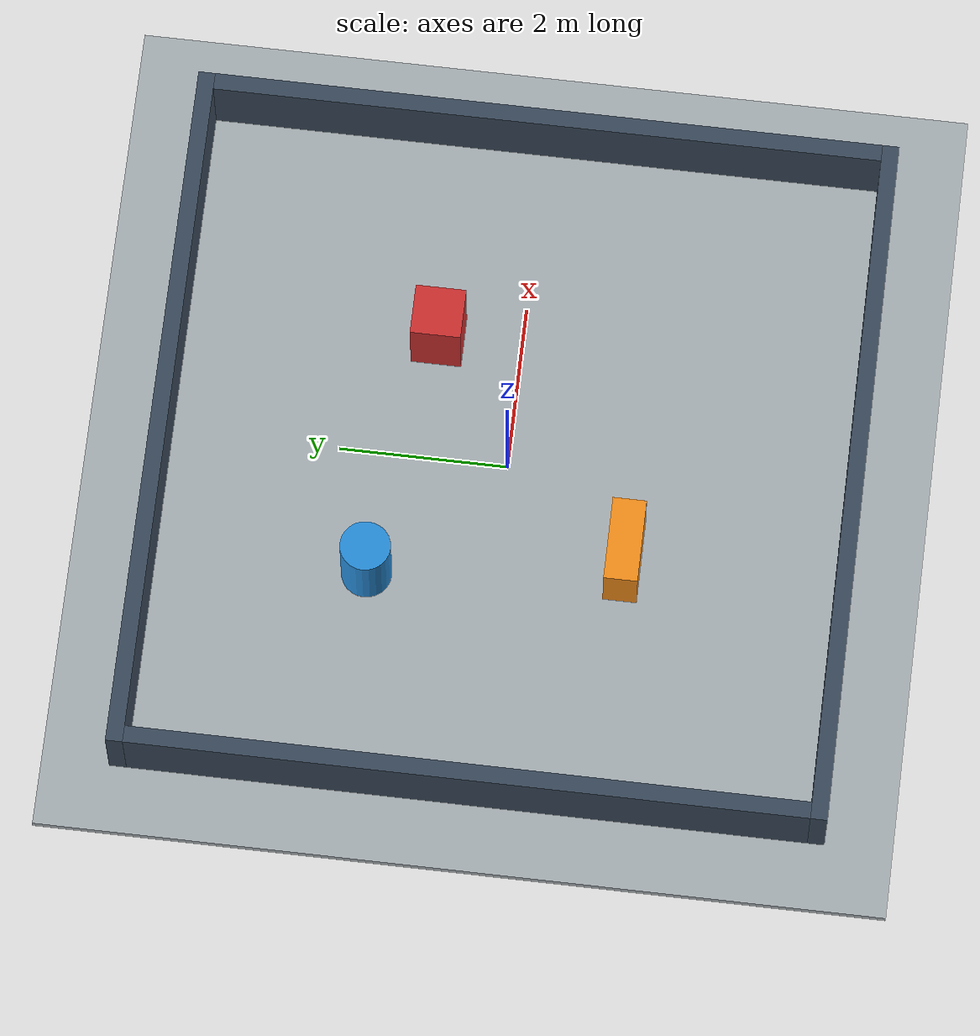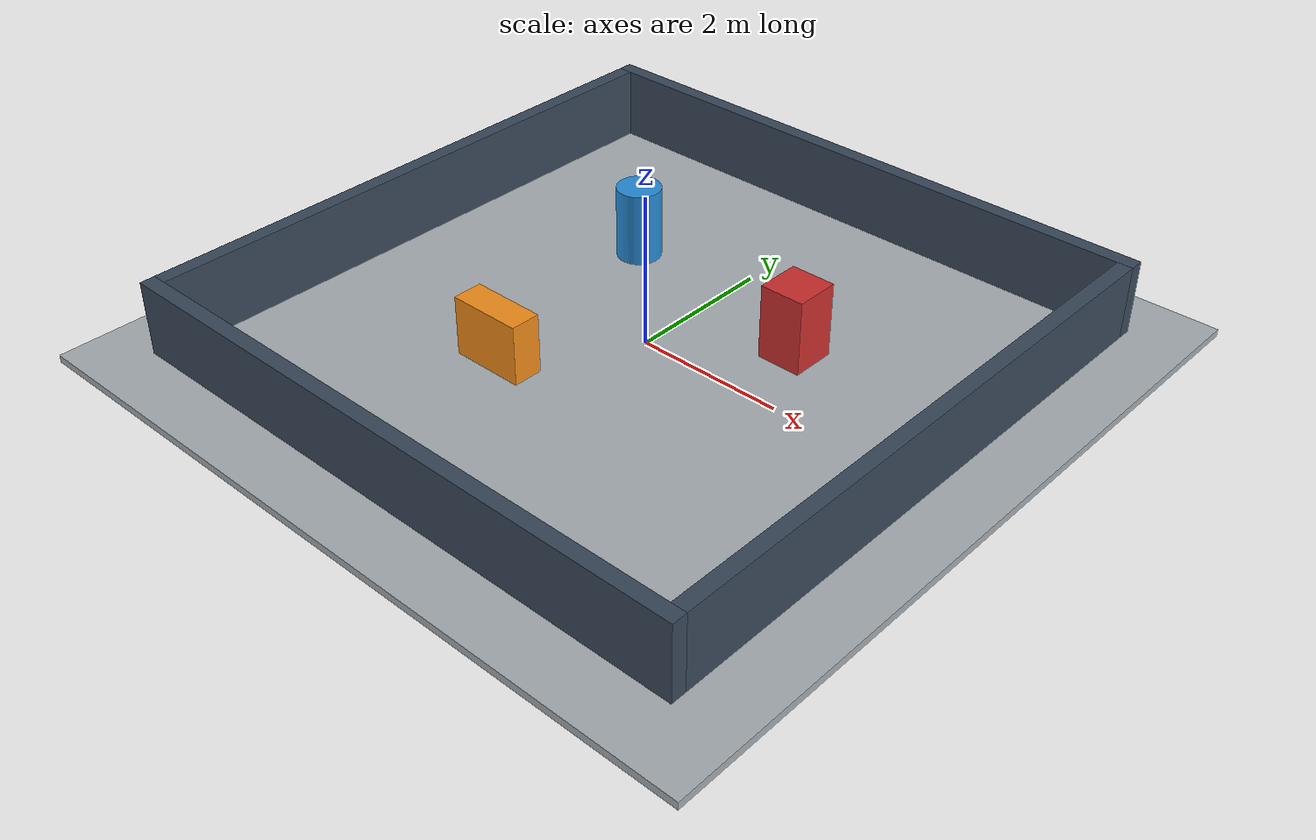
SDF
<?xml version="1.0"?>
<sdf version="1.9">
  <world name="physical_ai_world">
    <plugin
      filename="gz-sim-physics-system"
      name="gz::sim::systems::Physics"/>
    <plugin
      filename="gz-sim-user-commands-system"
      name="gz::sim::systems::UserCommands"/>
    <plugin
      filename="gz-sim-scene-broadcaster-system"
      name="gz::sim::systems::SceneBroadcaster"/>
    <plugin
      filename="gz-sim-sensors-system"
      name="gz::sim::systems::Sensors">
      <render_engine>ogre2</render_engine>
    </plugin>
    <plugin
      filename="gz-sim-imu-system"
      name="gz::sim::systems::Imu"/>

    <physics name="1ms" type="ignored">
      <max_step_size>0.001</max_step_size>
      <real_time_factor>1.0</real_time_factor>
    </physics>

    <gravity>0 0 -9.81</gravity>

    <scene>
      <ambient>0.45 0.45 0.45 1</ambient>
      <background>0.75 0.85 0.95 1</background>
      <shadows>true</shadows>
    </scene>

    <light name="sun" type="directional">
      <cast_shadows>true</cast_shadows>
      <pose>0 0 10 0 0 0</pose>
      <diffuse>0.9 0.9 0.9 1</diffuse>
      <specular>0.2 0.2 0.2 1</specular>
      <attenuation>
        <range>1000</range>
        <constant>0.9</constant>
        <linear>0.01</linear>
        <quadratic>0.001</quadratic>
      </attenuation>
      <direction>-0.5 0.1 -0.9</direction>
    </light>

    <model name="ground_plane">
      <static>true</static>
      <pose>0 0 -0.05 0 0 0</pose>
      <link name="ground_link">
        <collision name="ground_collision">
          <geometry>
            <box>
              <size>10 10 0.1</size>
            </box>
          </geometry>
        </collision>
        <visual name="ground_visual">
          <geometry>
            <box>
              <size>10 10 0.1</size>
            </box>
          </geometry>
          <material>
            <ambient>0.65 0.68 0.70 1</ambient>
            <diffuse>0.65 0.68 0.70 1</diffuse>
            <specular>0.1 0.1 0.1 1</specular>
          </material>
        </visual>
      </link>
    </model>

    <model name="north_wall">
      <static>true</static>
      <pose>0 4.1 0.5 0 0 0</pose>
      <link name="wall_link">
        <collision name="wall_collision">
          <geometry>
            <box>
              <size>8.4 0.2 1.0</size>
            </box>
          </geometry>
        </collision>
        <visual name="wall_visual">
          <geometry>
            <box>
              <size>8.4 0.2 1.0</size>
            </box>
          </geometry>
          <material>
            <ambient>0.22 0.28 0.35 1</ambient>
            <diffuse>0.22 0.28 0.35 1</diffuse>
          </material>
        </visual>
      </link>
    </model>

    <model name="south_wall">
      <static>true</static>
      <pose>0 -4.1 0.5 0 0 0</pose>
      <link name="wall_link">
        <collision name="wall_collision">
          <geometry>
            <box>
              <size>8.4 0.2 1.0</size>
            </box>
          </geometry>
        </collision>
        <visual name="wall_visual">
          <geometry>
            <box>
              <size>8.4 0.2 1.0</size>
            </box>
          </geometry>
          <material>
            <ambient>0.22 0.28 0.35 1</ambient>
            <diffuse>0.22 0.28 0.35 1</diffuse>
          </material>
        </visual>
      </link>
    </model>

    <model name="east_wall">
      <static>true</static>
      <pose>4.1 0 0.5 0 0 0</pose>
      <link name="wall_link">
        <collision name="wall_collision">
          <geometry>
            <box>
              <size>0.2 8.0 1.0</size>
            </box>
          </geometry>
        </collision>
        <visual name="wall_visual">
          <geometry>
            <box>
              <size>0.2 8.0 1.0</size>
            </box>
          </geometry>
          <material>
            <ambient>0.22 0.28 0.35 1</ambient>
            <diffuse>0.22 0.28 0.35 1</diffuse>
          </material>
        </visual>
      </link>
    </model>

    <model name="west_wall">
      <static>true</static>
      <pose>-4.1 0 0.5 0 0 0</pose>
      <link name="wall_link">
        <collision name="wall_collision">
          <geometry>
            <box>
              <size>0.2 8.0 1.0</size>
            </box>
          </geometry>
        </collision>
        <visual name="wall_visual">
          <geometry>
            <box>
              <size>0.2 8.0 1.0</size>
            </box>
          </geometry>
          <material>
            <ambient>0.22 0.28 0.35 1</ambient>
            <diffuse>0.22 0.28 0.35 1</diffuse>
          </material>
        </visual>
      </link>
    </model>

    <model name="box_obstacle_1">
      <static>true</static>
      <pose>1.5 1.0 0.5 0 0 0</pose>
      <link name="box_link">
        <collision name="box_collision">
          <geometry>
            <box>
              <size>0.6 0.6 1.0</size>
            </box>
          </geometry>
        </collision>
        <visual name="box_visual">
          <geometry>
            <box>
              <size>0.6 0.6 1.0</size>
            </box>
          </geometry>
          <material>
            <ambient>0.80 0.18 0.18 1</ambient>
            <diffuse>0.80 0.18 0.18 1</diffuse>
          </material>
        </visual>
      </link>
    </model>

    <model name="box_obstacle_2">
      <static>true</static>
      <pose>-1.0 -1.5 0.4 0 0 0</pose>
      <link name="box_link">
        <collision name="box_collision">
          <geometry>
            <box>
              <size>1.0 0.4 0.8</size>
            </box>
          </geometry>
        </collision>
        <visual name="box_visual">
          <geometry>
            <box>
              <size>1.0 0.4 0.8</size>
            </box>
          </geometry>
          <material>
            <ambient>0.95 0.55 0.10 1</ambient>
            <diffuse>0.95 0.55 0.10 1</diffuse>
          </material>
        </visual>
      </link>
    </model>

    <model name="cylinder_obstacle">
      <static>true</static>
      <pose>-1.5 1.5 0.5 0 0 0</pose>
      <link name="cylinder_link">
        <collision name="cylinder_collision">
          <geometry>
            <cylinder>
              <radius>0.3</radius>
              <length>1.0</length>
            </cylinder>
          </geometry>
        </collision>
        <visual name="cylinder_visual">
          <geometry>
            <cylinder>
              <radius>0.3</radius>
              <length>1.0</length>
            </cylinder>
          </geometry>
          <material>
            <ambient>0.15 0.55 0.85 1</ambient>
            <diffuse>0.15 0.55 0.85 1</diffuse>
          </material>
        </visual>
      </link>
    </model>
  </world>
</sdf>
